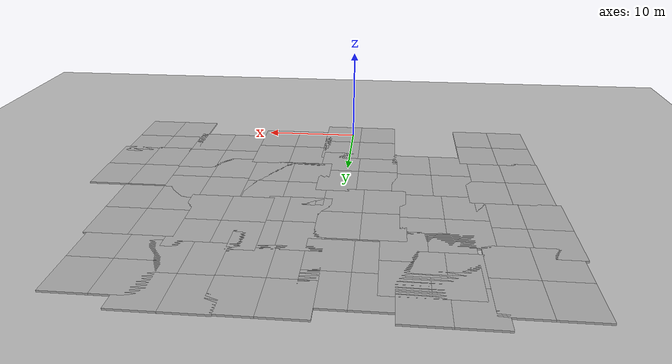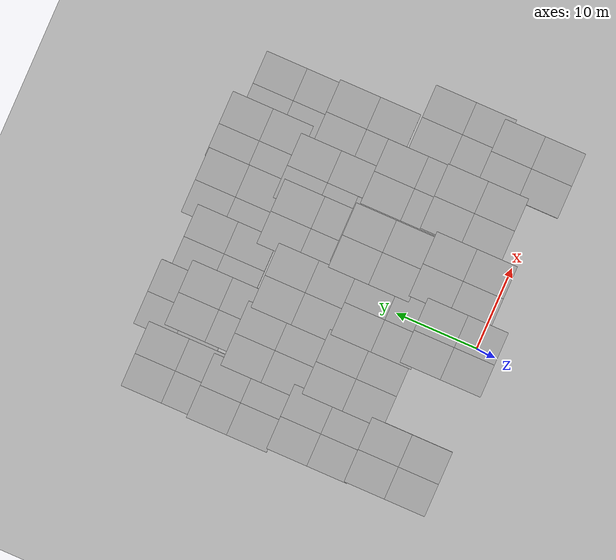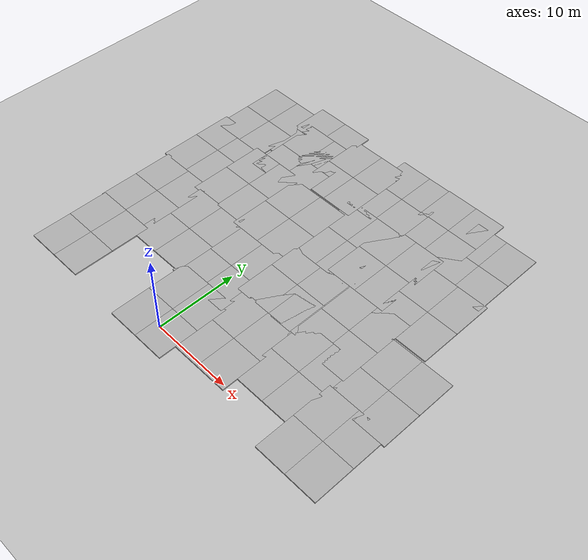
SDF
<sdf version="1.6">
 <world name="default">
  <model name="ground_plane">
   <static>1</static>
   <link name="link">
    <collision name="collision">
     <geometry><plane><normal>0 0 1</normal><size>100 100</size></plane></geometry>
     <surface><friction><ode><mu>100</mu><mu2>50</mu2></ode></friction></surface>
    </collision>
    <visual name="visual">
     <cast_shadows>0</cast_shadows>
     <geometry><plane><normal>0 0 1</normal><size>100 100</size></plane></geometry>
     <material>
      <script><uri>file://media/materials/scripts/gazebo.material</uri><name>Gazebo/Grey</name></script>
     </material>
    </visual>
   </link>
  </model>
  <model name="mud_box_clone_0">
   <static>1</static>
   <link name="link">
    <collision name="collision"><geometry><box><size>8 10 0.2</size></box></geometry></collision>
    <visual name="visual_1">
     <pose>-2 2.5 0 0 -0 0</pose>
     <cast_shadows>0</cast_shadows>
     <geometry><box><size>4 5 0.2</size></box></geometry>
     <material>
      <script>
       <uri>model://mud_box/materials/scripts</uri>
       <uri>model://mud_box/materials/textures</uri>
       <name>vrc/mud</name>
      </script>
     </material>
    </visual>
    <visual name="visual_2">
     <pose>2 2.5 0 0 -0 0</pose>
     <cast_shadows>0</cast_shadows>
     <geometry><box><size>4 5 0.2</size></box></geometry>
     <material>
      <script>
       <uri>model://mud_box/materials/scripts</uri>
       <uri>model://mud_box/materials/textures</uri>
       <name>vrc/mud</name>
      </script>
     </material>
    </visual>
    <visual name="visual_3">
     <pose>2 -2.5 0 0 -0 0</pose>
     <cast_shadows>0</cast_shadows>
     <geometry><box><size>4 5 0.2</size></box></geometry>
     <material>
      <script>
       <uri>model://mud_box/materials/scripts</uri>
       <uri>model://mud_box/materials/textures</uri>
       <name>vrc/mud</name>
      </script>
     </material>
    </visual>
    <visual name="visual_4">
     <pose>-2 -2.5 0 0 -0 0</pose>
     <cast_shadows>0</cast_shadows>
     <geometry><box><size>4 5 0.2</size></box></geometry>
     <material>
      <script>
       <uri>model://mud_box/materials/scripts</uri>
       <uri>model://mud_box/materials/textures</uri>
       <name>vrc/mud</name>
      </script>
     </material>
    </visual>
   </link>
   <pose>-0.907816 2.44072 0 0 -0 0</pose>
  </model>
  <model name="mud_box_clone_2">
   <static>1</static>
   <link name="link">
    <collision name="collision"><geometry><box><size>8 10 0.2</size></box></geometry></collision>
    <visual name="visual_1">
     <pose>-2 2.5 0 0 -0 0</pose>
     <cast_shadows>0</cast_shadows>
     <geometry><box><size>4 5 0.2</size></box></geometry>
     <material>
      <script>
       <uri>model://mud_box/materials/scripts</uri>
       <uri>model://mud_box/materials/textures</uri>
       <name>vrc/mud</name>
      </script>
     </material>
    </visual>
    <visual name="visual_2">
     <pose>2 2.5 0 0 -0 0</pose>
     <cast_shadows>0</cast_shadows>
     <geometry><box><size>4 5 0.2</size></box></geometry>
     <material>
      <script>
       <uri>model://mud_box/materials/scripts</uri>
       <uri>model://mud_box/materials/textures</uri>
       <name>vrc/mud</name>
      </script>
     </material>
    </visual>
    <visual name="visual_3">
     <pose>2 -2.5 0 0 -0 0</pose>
     <cast_shadows>0</cast_shadows>
     <geometry><box><size>4 5 0.2</size></box></geometry>
     <material>
      <script>
       <uri>model://mud_box/materials/scripts</uri>
       <uri>model://mud_box/materials/textures</uri>
       <name>vrc/mud</name>
      </script>
     </material>
    </visual>
    <visual name="visual_4">
     <pose>-2 -2.5 0 0 -0 0</pose>
     <cast_shadows>0</cast_shadows>
     <geometry><box><size>4 5 0.2</size></box></geometry>
     <material>
      <script>
       <uri>model://mud_box/materials/scripts</uri>
       <uri>model://mud_box/materials/textures</uri>
       <name>vrc/mud</name>
      </script>
     </material>
    </visual>
   </link>
   <pose>6.41573 4.52602 0 0 -0 0</pose>
  </model>
  <model name="mud_box_clone_4">
   <static>1</static>
   <link name="link">
    <collision name="collision"><geometry><box><size>8 10 0.2</size></box></geometry></collision>
    <visual name="visual_1">
     <pose>-2 2.5 0 0 -0 0</pose>
     <cast_shadows>0</cast_shadows>
     <geometry><box><size>4 5 0.2</size></box></geometry>
     <material>
      <script>
       <uri>model://mud_box/materials/scripts</uri>
       <uri>model://mud_box/materials/textures</uri>
       <name>vrc/mud</name>
      </script>
     </material>
    </visual>
    <visual name="visual_2">
     <pose>2 2.5 0 0 -0 0</pose>
     <cast_shadows>0</cast_shadows>
     <geometry><box><size>4 5 0.2</size></box></geometry>
     <material>
      <script>
       <uri>model://mud_box/materials/scripts</uri>
       <uri>model://mud_box/materials/textures</uri>
       <name>vrc/mud</name>
      </script>
     </material>
    </visual>
    <visual name="visual_3">
     <pose>2 -2.5 0 0 -0 0</pose>
     <cast_shadows>0</cast_shadows>
     <geometry><box><size>4 5 0.2</size></box></geometry>
     <material>
      <script>
       <uri>model://mud_box/materials/scripts</uri>
       <uri>model://mud_box/materials/textures</uri>
       <name>vrc/mud</name>
      </script>
     </material>
    </visual>
    <visual name="visual_4">
     <pose>-2 -2.5 0 0 -0 0</pose>
     <cast_shadows>0</cast_shadows>
     <geometry><box><size>4 5 0.2</size></box></geometry>
     <material>
      <script>
       <uri>model://mud_box/materials/scripts</uri>
       <uri>model://mud_box/materials/textures</uri>
       <name>vrc/mud</name>
      </script>
     </material>
    </visual>
   </link>
   <pose>13.9982 6.44176 0 0 -0 0</pose>
  </model>
  <model name="mud_box_clone_12">
   <static>1</static>
   <link name="link">
    <collision name="collision"><geometry><box><size>8 10 0.2</size></box></geometry></collision>
    <visual name="visual_1">
     <pose>-2 2.5 0 0 -0 0</pose>
     <cast_shadows>0</cast_shadows>
     <geometry><box><size>4 5 0.2</size></box></geometry>
     <material>
      <script>
       <uri>model://mud_box/materials/scripts</uri>
       <uri>model://mud_box/materials/textures</uri>
       <name>vrc/mud</name>
      </script>
     </material>
    </visual>
    <visual name="visual_2">
     <pose>2 2.5 0 0 -0 0</pose>
     <cast_shadows>0</cast_shadows>
     <geometry><box><size>4 5 0.2</size></box></geometry>
     <material>
      <script>
       <uri>model://mud_box/materials/scripts</uri>
       <uri>model://mud_box/materials/textures</uri>
       <name>vrc/mud</name>
      </script>
     </material>
    </visual>
    <visual name="visual_3">
     <pose>2 -2.5 0 0 -0 0</pose>
     <cast_shadows>0</cast_shadows>
     <geometry><box><size>4 5 0.2</size></box></geometry>
     <material>
      <script>
       <uri>model://mud_box/materials/scripts</uri>
       <uri>model://mud_box/materials/textures</uri>
       <name>vrc/mud</name>
      </script>
     </material>
    </visual>
    <visual name="visual_4">
     <pose>-2 -2.5 0 0 -0 0</pose>
     <cast_shadows>0</cast_shadows>
     <geometry><box><size>4 5 0.2</size></box></geometry>
     <material>
      <script>
       <uri>model://mud_box/materials/scripts</uri>
       <uri>model://mud_box/materials/textures</uri>
       <name>vrc/mud</name>
      </script>
     </material>
    </visual>
   </link>
   <pose>-15.9101 2.82816 0 0 -0 0</pose>
  </model>
  <model name="mud_box_clone_14">
   <static>1</static>
   <link name="link">
    <collision name="collision"><geometry><box><size>8 10 0.2</size></box></geometry></collision>
    <visual name="visual_1">
     <pose>-2 2.5 0 0 -0 0</pose>
     <cast_shadows>0</cast_shadows>
     <geometry><box><size>4 5 0.2</size></box></geometry>
     <material>
      <script>
       <uri>model://mud_box/materials/scripts</uri>
       <uri>model://mud_box/materials/textures</uri>
       <name>vrc/mud</name>
      </script>
     </material>
    </visual>
    <visual name="visual_2">
     <pose>2 2.5 0 0 -0 0</pose>
     <cast_shadows>0</cast_shadows>
     <geometry><box><size>4 5 0.2</size></box></geometry>
     <material>
      <script>
       <uri>model://mud_box/materials/scripts</uri>
       <uri>model://mud_box/materials/textures</uri>
       <name>vrc/mud</name>
      </script>
     </material>
    </visual>
    <visual name="visual_3">
     <pose>2 -2.5 0 0 -0 0</pose>
     <cast_shadows>0</cast_shadows>
     <geometry><box><size>4 5 0.2</size></box></geometry>
     <material>
      <script>
       <uri>model://mud_box/materials/scripts</uri>
       <uri>model://mud_box/materials/textures</uri>
       <name>vrc/mud</name>
      </script>
     </material>
    </visual>
    <visual name="visual_4">
     <pose>-2 -2.5 0 0 -0 0</pose>
     <cast_shadows>0</cast_shadows>
     <geometry><box><size>4 5 0.2</size></box></geometry>
     <material>
      <script>
       <uri>model://mud_box/materials/scripts</uri>
       <uri>model://mud_box/materials/textures</uri>
       <name>vrc/mud</name>
      </script>
     </material>
    </visual>
   </link>
   <pose>13.8616 13.8293 0 0 -0 0</pose>
  </model>
  <model name="mud_box_clone_15">
   <static>1</static>
   <link name="link">
    <collision name="collision"><geometry><box><size>8 10 0.2</size></box></geometry></collision>
    <visual name="visual_1">
     <pose>-2 2.5 0 0 -0 0</pose>
     <cast_shadows>0</cast_shadows>
     <geometry><box><size>4 5 0.2</size></box></geometry>
     <material>
      <script>
       <uri>model://mud_box/materials/scripts</uri>
       <uri>model://mud_box/materials/textures</uri>
       <name>vrc/mud</name>
      </script>
     </material>
    </visual>
    <visual name="visual_2">
     <pose>2 2.5 0 0 -0 0</pose>
     <cast_shadows>0</cast_shadows>
     <geometry><box><size>4 5 0.2</size></box></geometry>
     <material>
      <script>
       <uri>model://mud_box/materials/scripts</uri>
       <uri>model://mud_box/materials/textures</uri>
       <name>vrc/mud</name>
      </script>
     </material>
    </visual>
    <visual name="visual_3">
     <pose>2 -2.5 0 0 -0 0</pose>
     <cast_shadows>0</cast_shadows>
     <geometry><box><size>4 5 0.2</size></box></geometry>
     <material>
      <script>
       <uri>model://mud_box/materials/scripts</uri>
       <uri>model://mud_box/materials/textures</uri>
       <name>vrc/mud</name>
      </script>
     </material>
    </visual>
    <visual name="visual_4">
     <pose>-2 -2.5 0 0 -0 0</pose>
     <cast_shadows>0</cast_shadows>
     <geometry><box><size>4 5 0.2</size></box></geometry>
     <material>
      <script>
       <uri>model://mud_box/materials/scripts</uri>
       <uri>model://mud_box/materials/textures</uri>
       <name>vrc/mud</name>
      </script>
     </material>
    </visual>
   </link>
   <pose>5.74694 14.2584 0 0 -0 0</pose>
  </model>
  <model name="mud_box_clone_16">
   <static>1</static>
   <link name="link">
    <collision name="collision"><geometry><box><size>8 10 0.2</size></box></geometry></collision>
    <visual name="visual_1">
     <pose>-2 2.5 0 0 -0 0</pose>
     <cast_shadows>0</cast_shadows>
     <geometry><box><size>4 5 0.2</size></box></geometry>
     <material>
      <script>
       <uri>model://mud_box/materials/scripts</uri>
       <uri>model://mud_box/materials/textures</uri>
       <name>vrc/mud</name>
      </script>
     </material>
    </visual>
    <visual name="visual_2">
     <pose>2 2.5 0 0 -0 0</pose>
     <cast_shadows>0</cast_shadows>
     <geometry><box><size>4 5 0.2</size></box></geometry>
     <material>
      <script>
       <uri>model://mud_box/materials/scripts</uri>
       <uri>model://mud_box/materials/textures</uri>
       <name>vrc/mud</name>
      </script>
     </material>
    </visual>
    <visual name="visual_3">
     <pose>2 -2.5 0 0 -0 0</pose>
     <cast_shadows>0</cast_shadows>
     <geometry><box><size>4 5 0.2</size></box></geometry>
     <material>
      <script>
       <uri>model://mud_box/materials/scripts</uri>
       <uri>model://mud_box/materials/textures</uri>
       <name>vrc/mud</name>
      </script>
     </material>
    </visual>
    <visual name="visual_4">
     <pose>-2 -2.5 0 0 -0 0</pose>
     <cast_shadows>0</cast_shadows>
     <geometry><box><size>4 5 0.2</size></box></geometry>
     <material>
      <script>
       <uri>model://mud_box/materials/scripts</uri>
       <uri>model://mud_box/materials/textures</uri>
       <name>vrc/mud</name>
      </script>
     </material>
    </visual>
   </link>
   <pose>6.48316 14.3508 0 0 -0 0</pose>
  </model>
  <model name="mud_box_clone_17">
   <static>1</static>
   <link name="link">
    <collision name="collision"><geometry><box><size>8 10 0.2</size></box></geometry></collision>
    <visual name="visual_1">
     <pose>-2 2.5 0 0 -0 0</pose>
     <cast_shadows>0</cast_shadows>
     <geometry><box><size>4 5 0.2</size></box></geometry>
     <material>
      <script>
       <uri>model://mud_box/materials/scripts</uri>
       <uri>model://mud_box/materials/textures</uri>
       <name>vrc/mud</name>
      </script>
     </material>
    </visual>
    <visual name="visual_2">
     <pose>2 2.5 0 0 -0 0</pose>
     <cast_shadows>0</cast_shadows>
     <geometry><box><size>4 5 0.2</size></box></geometry>
     <material>
      <script>
       <uri>model://mud_box/materials/scripts</uri>
       <uri>model://mud_box/materials/textures</uri>
       <name>vrc/mud</name>
      </script>
     </material>
    </visual>
    <visual name="visual_3">
     <pose>2 -2.5 0 0 -0 0</pose>
     <cast_shadows>0</cast_shadows>
     <geometry><box><size>4 5 0.2</size></box></geometry>
     <material>
      <script>
       <uri>model://mud_box/materials/scripts</uri>
       <uri>model://mud_box/materials/textures</uri>
       <name>vrc/mud</name>
      </script>
     </material>
    </visual>
    <visual name="visual_4">
     <pose>-2 -2.5 0 0 -0 0</pose>
     <cast_shadows>0</cast_shadows>
     <geometry><box><size>4 5 0.2</size></box></geometry>
     <material>
      <script>
       <uri>model://mud_box/materials/scripts</uri>
       <uri>model://mud_box/materials/textures</uri>
       <name>vrc/mud</name>
      </script>
     </material>
    </visual>
   </link>
   <pose>-1.17694 10.9468 0 0 -0 0</pose>
  </model>
  <model name="mud_box_clone_18">
   <static>1</static>
   <link name="link">
    <collision name="collision"><geometry><box><size>8 10 0.2</size></box></geometry></collision>
    <visual name="visual_1">
     <pose>-2 2.5 0 0 -0 0</pose>
     <cast_shadows>0</cast_shadows>
     <geometry><box><size>4 5 0.2</size></box></geometry>
     <material>
      <script>
       <uri>model://mud_box/materials/scripts</uri>
       <uri>model://mud_box/materials/textures</uri>
       <name>vrc/mud</name>
      </script>
     </material>
    </visual>
    <visual name="visual_2">
     <pose>2 2.5 0 0 -0 0</pose>
     <cast_shadows>0</cast_shadows>
     <geometry><box><size>4 5 0.2</size></box></geometry>
     <material>
      <script>
       <uri>model://mud_box/materials/scripts</uri>
       <uri>model://mud_box/materials/textures</uri>
       <name>vrc/mud</name>
      </script>
     </material>
    </visual>
    <visual name="visual_3">
     <pose>2 -2.5 0 0 -0 0</pose>
     <cast_shadows>0</cast_shadows>
     <geometry><box><size>4 5 0.2</size></box></geometry>
     <material>
      <script>
       <uri>model://mud_box/materials/scripts</uri>
       <uri>model://mud_box/materials/textures</uri>
       <name>vrc/mud</name>
      </script>
     </material>
    </visual>
    <visual name="visual_4">
     <pose>-2 -2.5 0 0 -0 0</pose>
     <cast_shadows>0</cast_shadows>
     <geometry><box><size>4 5 0.2</size></box></geometry>
     <material>
      <script>
       <uri>model://mud_box/materials/scripts</uri>
       <uri>model://mud_box/materials/textures</uri>
       <name>vrc/mud</name>
      </script>
     </material>
    </visual>
   </link>
   <pose>-8.65486 11.2273 0 0 -0 0</pose>
  </model>
  <model name="mud_box_clone_19">
   <static>1</static>
   <link name="link">
    <collision name="collision"><geometry><box><size>8 10 0.2</size></box></geometry></collision>
    <visual name="visual_1">
     <pose>-2 2.5 0 0 -0 0</pose>
     <cast_shadows>0</cast_shadows>
     <geometry><box><size>4 5 0.2</size></box></geometry>
     <material>
      <script>
       <uri>model://mud_box/materials/scripts</uri>
       <uri>model://mud_box/materials/textures</uri>
       <name>vrc/mud</name>
      </script>
     </material>
    </visual>
    <visual name="visual_2">
     <pose>2 2.5 0 0 -0 0</pose>
     <cast_shadows>0</cast_shadows>
     <geometry><box><size>4 5 0.2</size></box></geometry>
     <material>
      <script>
       <uri>model://mud_box/materials/scripts</uri>
       <uri>model://mud_box/materials/textures</uri>
       <name>vrc/mud</name>
      </script>
     </material>
    </visual>
    <visual name="visual_3">
     <pose>2 -2.5 0 0 -0 0</pose>
     <cast_shadows>0</cast_shadows>
     <geometry><box><size>4 5 0.2</size></box></geometry>
     <material>
      <script>
       <uri>model://mud_box/materials/scripts</uri>
       <uri>model://mud_box/materials/textures</uri>
       <name>vrc/mud</name>
      </script>
     </material>
    </visual>
    <visual name="visual_4">
     <pose>-2 -2.5 0 0 -0 0</pose>
     <cast_shadows>0</cast_shadows>
     <geometry><box><size>4 5 0.2</size></box></geometry>
     <material>
      <script>
       <uri>model://mud_box/materials/scripts</uri>
       <uri>model://mud_box/materials/textures</uri>
       <name>vrc/mud</name>
      </script>
     </material>
    </visual>
   </link>
   <pose>-16 12.4301 0 0 -0 0</pose>
  </model>
  <model name="mud_box_clone_20">
   <static>1</static>
   <link name="link">
    <collision name="collision"><geometry><box><size>8 10 0.2</size></box></geometry></collision>
    <visual name="visual_1">
     <pose>-2 2.5 0 0 -0 0</pose>
     <cast_shadows>0</cast_shadows>
     <geometry><box><size>4 5 0.2</size></box></geometry>
     <material>
      <script>
       <uri>model://mud_box/materials/scripts</uri>
       <uri>model://mud_box/materials/textures</uri>
       <name>vrc/mud</name>
      </script>
     </material>
    </visual>
    <visual name="visual_2">
     <pose>2 2.5 0 0 -0 0</pose>
     <cast_shadows>0</cast_shadows>
     <geometry><box><size>4 5 0.2</size></box></geometry>
     <material>
      <script>
       <uri>model://mud_box/materials/scripts</uri>
       <uri>model://mud_box/materials/textures</uri>
       <name>vrc/mud</name>
      </script>
     </material>
    </visual>
    <visual name="visual_3">
     <pose>2 -2.5 0 0 -0 0</pose>
     <cast_shadows>0</cast_shadows>
     <geometry><box><size>4 5 0.2</size></box></geometry>
     <material>
      <script>
       <uri>model://mud_box/materials/scripts</uri>
       <uri>model://mud_box/materials/textures</uri>
       <name>vrc/mud</name>
      </script>
     </material>
    </visual>
    <visual name="visual_4">
     <pose>-2 -2.5 0 0 -0 0</pose>
     <cast_shadows>0</cast_shadows>
     <geometry><box><size>4 5 0.2</size></box></geometry>
     <material>
      <script>
       <uri>model://mud_box/materials/scripts</uri>
       <uri>model://mud_box/materials/textures</uri>
       <name>vrc/mud</name>
      </script>
     </material>
    </visual>
   </link>
   <pose>-1.98322 20.4975 0 0 -0 0</pose>
  </model>
  <model name="mud_box_clone_21">
   <static>1</static>
   <link name="link">
    <collision name="collision"><geometry><box><size>8 10 0.2</size></box></geometry></collision>
    <visual name="visual_1">
     <pose>-2 2.5 0 0 -0 0</pose>
     <cast_shadows>0</cast_shadows>
     <geometry><box><size>4 5 0.2</size></box></geometry>
     <material>
      <script>
       <uri>model://mud_box/materials/scripts</uri>
       <uri>model://mud_box/materials/textures</uri>
       <name>vrc/mud</name>
      </script>
     </material>
    </visual>
    <visual name="visual_2">
     <pose>2 2.5 0 0 -0 0</pose>
     <cast_shadows>0</cast_shadows>
     <geometry><box><size>4 5 0.2</size></box></geometry>
     <material>
      <script>
       <uri>model://mud_box/materials/scripts</uri>
       <uri>model://mud_box/materials/textures</uri>
       <name>vrc/mud</name>
      </script>
     </material>
    </visual>
    <visual name="visual_3">
     <pose>2 -2.5 0 0 -0 0</pose>
     <cast_shadows>0</cast_shadows>
     <geometry><box><size>4 5 0.2</size></box></geometry>
     <material>
      <script>
       <uri>model://mud_box/materials/scripts</uri>
       <uri>model://mud_box/materials/textures</uri>
       <name>vrc/mud</name>
      </script>
     </material>
    </visual>
    <visual name="visual_4">
     <pose>-2 -2.5 0 0 -0 0</pose>
     <cast_shadows>0</cast_shadows>
     <geometry><box><size>4 5 0.2</size></box></geometry>
     <material>
      <script>
       <uri>model://mud_box/materials/scripts</uri>
       <uri>model://mud_box/materials/textures</uri>
       <name>vrc/mud</name>
      </script>
     </material>
    </visual>
   </link>
   <pose>-9.39199 21.0113 0 0 -0 0</pose>
  </model>
  <model name="mud_box_clone_22">
   <static>1</static>
   <link name="link">
    <collision name="collision"><geometry><box><size>8 10 0.2</size></box></geometry></collision>
    <visual name="visual_1">
     <pose>-2 2.5 0 0 -0 0</pose>
     <cast_shadows>0</cast_shadows>
     <geometry><box><size>4 5 0.2</size></box></geometry>
     <material>
      <script>
       <uri>model://mud_box/materials/scripts</uri>
       <uri>model://mud_box/materials/textures</uri>
       <name>vrc/mud</name>
      </script>
     </material>
    </visual>
    <visual name="visual_2">
     <pose>2 2.5 0 0 -0 0</pose>
     <cast_shadows>0</cast_shadows>
     <geometry><box><size>4 5 0.2</size></box></geometry>
     <material>
      <script>
       <uri>model://mud_box/materials/scripts</uri>
       <uri>model://mud_box/materials/textures</uri>
       <name>vrc/mud</name>
      </script>
     </material>
    </visual>
    <visual name="visual_3">
     <pose>2 -2.5 0 0 -0 0</pose>
     <cast_shadows>0</cast_shadows>
     <geometry><box><size>4 5 0.2</size></box></geometry>
     <material>
      <script>
       <uri>model://mud_box/materials/scripts</uri>
       <uri>model://mud_box/materials/textures</uri>
       <name>vrc/mud</name>
      </script>
     </material>
    </visual>
    <visual name="visual_4">
     <pose>-2 -2.5 0 0 -0 0</pose>
     <cast_shadows>0</cast_shadows>
     <geometry><box><size>4 5 0.2</size></box></geometry>
     <material>
      <script>
       <uri>model://mud_box/materials/scripts</uri>
       <uri>model://mud_box/materials/textures</uri>
       <name>vrc/mud</name>
      </script>
     </material>
    </visual>
   </link>
   <pose>4.9661 22.8066 0 0 -0 0</pose>
  </model>
  <model name="mud_box_clone_23">
   <static>1</static>
   <link name="link">
    <collision name="collision"><geometry><box><size>8 10 0.2</size></box></geometry></collision>
    <visual name="visual_1">
     <pose>-2 2.5 0 0 -0 0</pose>
     <cast_shadows>0</cast_shadows>
     <geometry><box><size>4 5 0.2</size></box></geometry>
     <material>
      <script>
       <uri>model://mud_box/materials/scripts</uri>
       <uri>model://mud_box/materials/textures</uri>
       <name>vrc/mud</name>
      </script>
     </material>
    </visual>
    <visual name="visual_2">
     <pose>2 2.5 0 0 -0 0</pose>
     <cast_shadows>0</cast_shadows>
     <geometry><box><size>4 5 0.2</size></box></geometry>
     <material>
      <script>
       <uri>model://mud_box/materials/scripts</uri>
       <uri>model://mud_box/materials/textures</uri>
       <name>vrc/mud</name>
      </script>
     </material>
    </visual>
    <visual name="visual_3">
     <pose>2 -2.5 0 0 -0 0</pose>
     <cast_shadows>0</cast_shadows>
     <geometry><box><size>4 5 0.2</size></box></geometry>
     <material>
      <script>
       <uri>model://mud_box/materials/scripts</uri>
       <uri>model://mud_box/materials/textures</uri>
       <name>vrc/mud</name>
      </script>
     </material>
    </visual>
    <visual name="visual_4">
     <pose>-2 -2.5 0 0 -0 0</pose>
     <cast_shadows>0</cast_shadows>
     <geometry><box><size>4 5 0.2</size></box></geometry>
     <material>
      <script>
       <uri>model://mud_box/materials/scripts</uri>
       <uri>model://mud_box/materials/textures</uri>
       <name>vrc/mud</name>
      </script>
     </material>
    </visual>
   </link>
   <pose>10.4957 23.1803 0 0 -0 0</pose>
  </model>
  <model name="mud_box_clone_24">
   <static>1</static>
   <link name="link">
    <collision name="collision"><geometry><box><size>8 10 0.2</size></box></geometry></collision>
    <visual name="visual_1">
     <pose>-2 2.5 0 0 -0 0</pose>
     <cast_shadows>0</cast_shadows>
     <geometry><box><size>4 5 0.2</size></box></geometry>
     <material>
      <script>
       <uri>model://mud_box/materials/scripts</uri>
       <uri>model://mud_box/materials/textures</uri>
       <name>vrc/mud</name>
      </script>
     </material>
    </visual>
    <visual name="visual_2">
     <pose>2 2.5 0 0 -0 0</pose>
     <cast_shadows>0</cast_shadows>
     <geometry><box><size>4 5 0.2</size></box></geometry>
     <material>
      <script>
       <uri>model://mud_box/materials/scripts</uri>
       <uri>model://mud_box/materials/textures</uri>
       <name>vrc/mud</name>
      </script>
     </material>
    </visual>
    <visual name="visual_3">
     <pose>2 -2.5 0 0 -0 0</pose>
     <cast_shadows>0</cast_shadows>
     <geometry><box><size>4 5 0.2</size></box></geometry>
     <material>
      <script>
       <uri>model://mud_box/materials/scripts</uri>
       <uri>model://mud_box/materials/textures</uri>
       <name>vrc/mud</name>
      </script>
     </material>
    </visual>
    <visual name="visual_4">
     <pose>-2 -2.5 0 0 -0 0</pose>
     <cast_shadows>0</cast_shadows>
     <geometry><box><size>4 5 0.2</size></box></geometry>
     <material>
      <script>
       <uri>model://mud_box/materials/scripts</uri>
       <uri>model://mud_box/materials/textures</uri>
       <name>vrc/mud</name>
      </script>
     </material>
    </visual>
   </link>
   <pose>17.863 21.5311 0 0 -0 0</pose>
  </model>
  <model name="mud_box_clone_8_clone_clone_4">
   <static>1</static>
   <link name="link">
    <collision name="collision"><geometry><box><size>8 10 0.2</size></box></geometry></collision>
    <visual name="visual_1">
     <pose>-2 2.5 0 0 -0 0</pose>
     <cast_shadows>0</cast_shadows>
     <geometry><box><size>4 5 0.2</size></box></geometry>
     <material>
      <script>
       <uri>model://mud_box/materials/scripts</uri>
       <uri>model://mud_box/materials/textures</uri>
       <name>vrc/mud</name>
      </script>
     </material>
    </visual>
    <visual name="visual_2">
     <pose>2 2.5 0 0 -0 0</pose>
     <cast_shadows>0</cast_shadows>
     <geometry><box><size>4 5 0.2</size></box></geometry>
     <material>
      <script>
       <uri>model://mud_box/materials/scripts</uri>
       <uri>model://mud_box/materials/textures</uri>
       <name>vrc/mud</name>
      </script>
     </material>
    </visual>
    <visual name="visual_3">
     <pose>2 -2.5 0 0 -0 0</pose>
     <cast_shadows>0</cast_shadows>
     <geometry><box><size>4 5 0.2</size></box></geometry>
     <material>
      <script>
       <uri>model://mud_box/materials/scripts</uri>
       <uri>model://mud_box/materials/textures</uri>
       <name>vrc/mud</name>
      </script>
     </material>
    </visual>
    <visual name="visual_4">
     <pose>-2 -2.5 0 0 -0 0</pose>
     <cast_shadows>0</cast_shadows>
     <geometry><box><size>4 5 0.2</size></box></geometry>
     <material>
      <script>
       <uri>model://mud_box/materials/scripts</uri>
       <uri>model://mud_box/materials/textures</uri>
       <name>vrc/mud</name>
      </script>
     </material>
    </visual>
   </link>
   <pose>-16.4157 22.2203 0 0 -0 0</pose>
  </model>
  <model name="mud_box_clone_8_clone_clone_5">
   <static>1</static>
   <link name="link">
    <collision name="collision"><geometry><box><size>8 10 0.2</size></box></geometry></collision>
    <visual name="visual_1">
     <pose>-2 2.5 0 0 -0 0</pose>
     <cast_shadows>0</cast_shadows>
     <geometry><box><size>4 5 0.2</size></box></geometry>
     <material>
      <script>
       <uri>model://mud_box/materials/scripts</uri>
       <uri>model://mud_box/materials/textures</uri>
       <name>vrc/mud</name>
      </script>
     </material>
    </visual>
    <visual name="visual_2">
     <pose>2 2.5 0 0 -0 0</pose>
     <cast_shadows>0</cast_shadows>
     <geometry><box><size>4 5 0.2</size></box></geometry>
     <material>
      <script>
       <uri>model://mud_box/materials/scripts</uri>
       <uri>model://mud_box/materials/textures</uri>
       <name>vrc/mud</name>
      </script>
     </material>
    </visual>
    <visual name="visual_3">
     <pose>2 -2.5 0 0 -0 0</pose>
     <cast_shadows>0</cast_shadows>
     <geometry><box><size>4 5 0.2</size></box></geometry>
     <material>
      <script>
       <uri>model://mud_box/materials/scripts</uri>
       <uri>model://mud_box/materials/textures</uri>
       <name>vrc/mud</name>
      </script>
     </material>
    </visual>
    <visual name="visual_4">
     <pose>-2 -2.5 0 0 -0 0</pose>
     <cast_shadows>0</cast_shadows>
     <geometry><box><size>4 5 0.2</size></box></geometry>
     <material>
      <script>
       <uri>model://mud_box/materials/scripts</uri>
       <uri>model://mud_box/materials/textures</uri>
       <name>vrc/mud</name>
      </script>
     </material>
    </visual>
   </link>
   <pose>-16.0684 30.4708 0 0 -0 0</pose>
  </model>
  <model name="mud_box_clone_8_clone_clone_6">
   <static>1</static>
   <link name="link">
    <collision name="collision"><geometry><box><size>8 10 0.2</size></box></geometry></collision>
    <visual name="visual_1">
     <pose>-2 2.5 0 0 -0 0</pose>
     <cast_shadows>0</cast_shadows>
     <geometry><box><size>4 5 0.2</size></box></geometry>
     <material>
      <script>
       <uri>model://mud_box/materials/scripts</uri>
       <uri>model://mud_box/materials/textures</uri>
       <name>vrc/mud</name>
      </script>
     </material>
    </visual>
    <visual name="visual_2">
     <pose>2 2.5 0 0 -0 0</pose>
     <cast_shadows>0</cast_shadows>
     <geometry><box><size>4 5 0.2</size></box></geometry>
     <material>
      <script>
       <uri>model://mud_box/materials/scripts</uri>
       <uri>model://mud_box/materials/textures</uri>
       <name>vrc/mud</name>
      </script>
     </material>
    </visual>
    <visual name="visual_3">
     <pose>2 -2.5 0 0 -0 0</pose>
     <cast_shadows>0</cast_shadows>
     <geometry><box><size>4 5 0.2</size></box></geometry>
     <material>
      <script>
       <uri>model://mud_box/materials/scripts</uri>
       <uri>model://mud_box/materials/textures</uri>
       <name>vrc/mud</name>
      </script>
     </material>
    </visual>
    <visual name="visual_4">
     <pose>-2 -2.5 0 0 -0 0</pose>
     <cast_shadows>0</cast_shadows>
     <geometry><box><size>4 5 0.2</size></box></geometry>
     <material>
      <script>
       <uri>model://mud_box/materials/scripts</uri>
       <uri>model://mud_box/materials/textures</uri>
       <name>vrc/mud</name>
      </script>
     </material>
    </visual>
   </link>
   <pose>-7.69518 28.72 0 0 -0 0</pose>
  </model>
  <model name="mud_box_clone_8_clone_clone_7">
   <static>1</static>
   <link name="link">
    <collision name="collision"><geometry><box><size>8 10 0.2</size></box></geometry></collision>
    <visual name="visual_1">
     <pose>-2 2.5 0 0 -0 0</pose>
     <cast_shadows>0</cast_shadows>
     <geometry><box><size>4 5 0.2</size></box></geometry>
     <material>
      <script>
       <uri>model://mud_box/materials/scripts</uri>
       <uri>model://mud_box/materials/textures</uri>
       <name>vrc/mud</name>
      </script>
     </material>
    </visual>
    <visual name="visual_2">
     <pose>2 2.5 0 0 -0 0</pose>
     <cast_shadows>0</cast_shadows>
     <geometry><box><size>4 5 0.2</size></box></geometry>
     <material>
      <script>
       <uri>model://mud_box/materials/scripts</uri>
       <uri>model://mud_box/materials/textures</uri>
       <name>vrc/mud</name>
      </script>
     </material>
    </visual>
    <visual name="visual_3">
     <pose>2 -2.5 0 0 -0 0</pose>
     <cast_shadows>0</cast_shadows>
     <geometry><box><size>4 5 0.2</size></box></geometry>
     <material>
      <script>
       <uri>model://mud_box/materials/scripts</uri>
       <uri>model://mud_box/materials/textures</uri>
       <name>vrc/mud</name>
      </script>
     </material>
    </visual>
    <visual name="visual_4">
     <pose>-2 -2.5 0 0 -0 0</pose>
     <cast_shadows>0</cast_shadows>
     <geometry><box><size>4 5 0.2</size></box></geometry>
     <material>
      <script>
       <uri>model://mud_box/materials/scripts</uri>
       <uri>model://mud_box/materials/textures</uri>
       <name>vrc/mud</name>
      </script>
     </material>
    </visual>
   </link>
   <pose>-9 32 0 0 -0 0</pose>
  </model>
  <model name="mud_box_clone_8_clone_clone_8">
   <static>1</static>
   <link name="link">
    <collision name="collision"><geometry><box><size>8 10 0.2</size></box></geometry></collision>
    <visual name="visual_1">
     <pose>-2 2.5 0 0 -0 0</pose>
     <cast_shadows>0</cast_shadows>
     <geometry><box><size>4 5 0.2</size></box></geometry>
     <material>
      <script>
       <uri>model://mud_box/materials/scripts</uri>
       <uri>model://mud_box/materials/textures</uri>
       <name>vrc/mud</name>
      </script>
     </material>
    </visual>
    <visual name="visual_2">
     <pose>2 2.5 0 0 -0 0</pose>
     <cast_shadows>0</cast_shadows>
     <geometry><box><size>4 5 0.2</size></box></geometry>
     <material>
      <script>
       <uri>model://mud_box/materials/scripts</uri>
       <uri>model://mud_box/materials/textures</uri>
       <name>vrc/mud</name>
      </script>
     </material>
    </visual>
    <visual name="visual_3">
     <pose>2 -2.5 0 0 -0 0</pose>
     <cast_shadows>0</cast_shadows>
     <geometry><box><size>4 5 0.2</size></box></geometry>
     <material>
      <script>
       <uri>model://mud_box/materials/scripts</uri>
       <uri>model://mud_box/materials/textures</uri>
       <name>vrc/mud</name>
      </script>
     </material>
    </visual>
    <visual name="visual_4">
     <pose>-2 -2.5 0 0 -0 0</pose>
     <cast_shadows>0</cast_shadows>
     <geometry><box><size>4 5 0.2</size></box></geometry>
     <material>
      <script>
       <uri>model://mud_box/materials/scripts</uri>
       <uri>model://mud_box/materials/textures</uri>
       <name>vrc/mud</name>
      </script>
     </material>
    </visual>
   </link>
   <pose>-1.63091 30.7104 0 0 -0 0</pose>
  </model>
  <model name="mud_box_clone_8_clone_clone_9">
   <static>1</static>
   <link name="link">
    <collision name="collision"><geometry><box><size>8 10 0.2</size></box></geometry></collision>
    <visual name="visual_1">
     <pose>-2 2.5 0 0 -0 0</pose>
     <cast_shadows>0</cast_shadows>
     <geometry><box><size>4 5 0.2</size></box></geometry>
     <material>
      <script>
       <uri>model://mud_box/materials/scripts</uri>
       <uri>model://mud_box/materials/textures</uri>
       <name>vrc/mud</name>
      </script>
     </material>
    </visual>
    <visual name="visual_2">
     <pose>2 2.5 0 0 -0 0</pose>
     <cast_shadows>0</cast_shadows>
     <geometry><box><size>4 5 0.2</size></box></geometry>
     <material>
      <script>
       <uri>model://mud_box/materials/scripts</uri>
       <uri>model://mud_box/materials/textures</uri>
       <name>vrc/mud</name>
      </script>
     </material>
    </visual>
    <visual name="visual_3">
     <pose>2 -2.5 0 0 -0 0</pose>
     <cast_shadows>0</cast_shadows>
     <geometry><box><size>4 5 0.2</size></box></geometry>
     <material>
      <script>
       <uri>model://mud_box/materials/scripts</uri>
       <uri>model://mud_box/materials/textures</uri>
       <name>vrc/mud</name>
      </script>
     </material>
    </visual>
    <visual name="visual_4">
     <pose>-2 -2.5 0 0 -0 0</pose>
     <cast_shadows>0</cast_shadows>
     <geometry><box><size>4 5 0.2</size></box></geometry>
     <material>
      <script>
       <uri>model://mud_box/materials/scripts</uri>
       <uri>model://mud_box/materials/textures</uri>
       <name>vrc/mud</name>
      </script>
     </material>
    </visual>
   </link>
   <pose>4.80593 32.1291 0 0 -0 0</pose>
  </model>
  <model name="mud_box_clone_8_clone_clone_10">
   <static>1</static>
   <link name="link">
    <collision name="collision"><geometry><box><size>8 10 0.2</size></box></geometry></collision>
    <visual name="visual_1">
     <pose>-2 2.5 0 0 -0 0</pose>
     <cast_shadows>0</cast_shadows>
     <geometry><box><size>4 5 0.2</size></box></geometry>
     <material>
      <script>
       <uri>model://mud_box/materials/scripts</uri>
       <uri>model://mud_box/materials/textures</uri>
       <name>vrc/mud</name>
      </script>
     </material>
    </visual>
    <visual name="visual_2">
     <pose>2 2.5 0 0 -0 0</pose>
     <cast_shadows>0</cast_shadows>
     <geometry><box><size>4 5 0.2</size></box></geometry>
     <material>
      <script>
       <uri>model://mud_box/materials/scripts</uri>
       <uri>model://mud_box/materials/textures</uri>
       <name>vrc/mud</name>
      </script>
     </material>
    </visual>
    <visual name="visual_3">
     <pose>2 -2.5 0 0 -0 0</pose>
     <cast_shadows>0</cast_shadows>
     <geometry><box><size>4 5 0.2</size></box></geometry>
     <material>
      <script>
       <uri>model://mud_box/materials/scripts</uri>
       <uri>model://mud_box/materials/textures</uri>
       <name>vrc/mud</name>
      </script>
     </material>
    </visual>
    <visual name="visual_4">
     <pose>-2 -2.5 0 0 -0 0</pose>
     <cast_shadows>0</cast_shadows>
     <geometry><box><size>4 5 0.2</size></box></geometry>
     <material>
      <script>
       <uri>model://mud_box/materials/scripts</uri>
       <uri>model://mud_box/materials/textures</uri>
       <name>vrc/mud</name>
      </script>
     </material>
    </visual>
   </link>
   <pose>11.7562 32.2073 0 0 -0 0</pose>
  </model>
  <model name="mud_box_clone_8_clone_clone_11">
   <static>1</static>
   <link name="link">
    <collision name="collision"><geometry><box><size>8 10 0.2</size></box></geometry></collision>
    <visual name="visual_1">
     <pose>-2 2.5 0 0 -0 0</pose>
     <cast_shadows>0</cast_shadows>
     <geometry><box><size>4 5 0.2</size></box></geometry>
     <material>
      <script>
       <uri>model://mud_box/materials/scripts</uri>
       <uri>model://mud_box/materials/textures</uri>
       <name>vrc/mud</name>
      </script>
     </material>
    </visual>
    <visual name="visual_2">
     <pose>2 2.5 0 0 -0 0</pose>
     <cast_shadows>0</cast_shadows>
     <geometry><box><size>4 5 0.2</size></box></geometry>
     <material>
      <script>
       <uri>model://mud_box/materials/scripts</uri>
       <uri>model://mud_box/materials/textures</uri>
       <name>vrc/mud</name>
      </script>
     </material>
    </visual>
    <visual name="visual_3">
     <pose>2 -2.5 0 0 -0 0</pose>
     <cast_shadows>0</cast_shadows>
     <geometry><box><size>4 5 0.2</size></box></geometry>
     <material>
      <script>
       <uri>model://mud_box/materials/scripts</uri>
       <uri>model://mud_box/materials/textures</uri>
       <name>vrc/mud</name>
      </script>
     </material>
    </visual>
    <visual name="visual_4">
     <pose>-2 -2.5 0 0 -0 0</pose>
     <cast_shadows>0</cast_shadows>
     <geometry><box><size>4 5 0.2</size></box></geometry>
     <material>
      <script>
       <uri>model://mud_box/materials/scripts</uri>
       <uri>model://mud_box/materials/textures</uri>
       <name>vrc/mud</name>
      </script>
     </material>
    </visual>
   </link>
   <pose>17.4981 30.4962 0 0 -0 0</pose>
  </model>
  <model name="mud_box_clone_8_clone_clone_14">
   <static>1</static>
   <link name="link">
    <collision name="collision"><geometry><box><size>8 10 0.2</size></box></geometry></collision>
    <visual name="visual_1">
     <pose>-2 2.5 0 0 -0 0</pose>
     <cast_shadows>0</cast_shadows>
     <geometry><box><size>4 5 0.2</size></box></geometry>
     <material>
      <script>
       <uri>model://mud_box/materials/scripts</uri>
       <uri>model://mud_box/materials/textures</uri>
       <name>vrc/mud</name>
      </script>
     </material>
    </visual>
    <visual name="visual_2">
     <pose>2 2.5 0 0 -0 0</pose>
     <cast_shadows>0</cast_shadows>
     <geometry><box><size>4 5 0.2</size></box></geometry>
     <material>
      <script>
       <uri>model://mud_box/materials/scripts</uri>
       <uri>model://mud_box/materials/textures</uri>
       <name>vrc/mud</name>
      </script>
     </material>
    </visual>
    <visual name="visual_3">
     <pose>2 -2.5 0 0 -0 0</pose>
     <cast_shadows>0</cast_shadows>
     <geometry><box><size>4 5 0.2</size></box></geometry>
     <material>
      <script>
       <uri>model://mud_box/materials/scripts</uri>
       <uri>model://mud_box/materials/textures</uri>
       <name>vrc/mud</name>
      </script>
     </material>
    </visual>
    <visual name="visual_4">
     <pose>-2 -2.5 0 0 -0 0</pose>
     <cast_shadows>0</cast_shadows>
     <geometry><box><size>4 5 0.2</size></box></geometry>
     <material>
      <script>
       <uri>model://mud_box/materials/scripts</uri>
       <uri>model://mud_box/materials/textures</uri>
       <name>vrc/mud</name>
      </script>
     </material>
    </visual>
   </link>
   <pose>21.2715 2.53707 0 0 -0 0</pose>
  </model>
  <model name="mud_box_clone_8_clone_clone_15">
   <static>1</static>
   <link name="link">
    <collision name="collision"><geometry><box><size>8 10 0.2</size></box></geometry></collision>
    <visual name="visual_1">
     <pose>-2 2.5 0 0 -0 0</pose>
     <cast_shadows>0</cast_shadows>
     <geometry><box><size>4 5 0.2</size></box></geometry>
     <material>
      <script>
       <uri>model://mud_box/materials/scripts</uri>
       <uri>model://mud_box/materials/textures</uri>
       <name>vrc/mud</name>
      </script>
     </material>
    </visual>
    <visual name="visual_2">
     <pose>2 2.5 0 0 -0 0</pose>
     <cast_shadows>0</cast_shadows>
     <geometry><box><size>4 5 0.2</size></box></geometry>
     <material>
      <script>
       <uri>model://mud_box/materials/scripts</uri>
       <uri>model://mud_box/materials/textures</uri>
       <name>vrc/mud</name>
      </script>
     </material>
    </visual>
    <visual name="visual_3">
     <pose>2 -2.5 0 0 -0 0</pose>
     <cast_shadows>0</cast_shadows>
     <geometry><box><size>4 5 0.2</size></box></geometry>
     <material>
      <script>
       <uri>model://mud_box/materials/scripts</uri>
       <uri>model://mud_box/materials/textures</uri>
       <name>vrc/mud</name>
      </script>
     </material>
    </visual>
    <visual name="visual_4">
     <pose>-2 -2.5 0 0 -0 0</pose>
     <cast_shadows>0</cast_shadows>
     <geometry><box><size>4 5 0.2</size></box></geometry>
     <material>
      <script>
       <uri>model://mud_box/materials/scripts</uri>
       <uri>model://mud_box/materials/textures</uri>
       <name>vrc/mud</name>
      </script>
     </material>
    </visual>
   </link>
   <pose>21.6769 11.2899 0 0 -0 0</pose>
  </model>
 </world>
</sdf>
